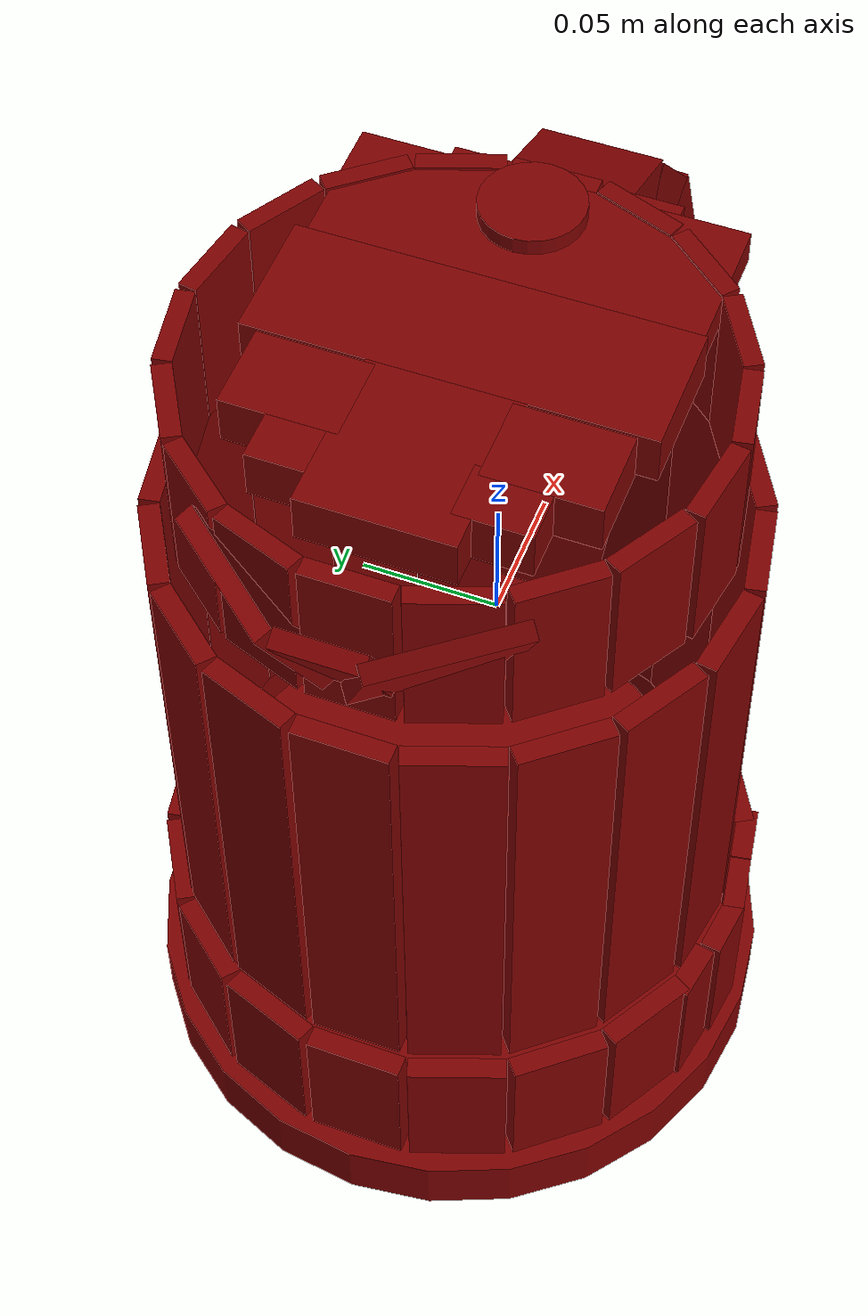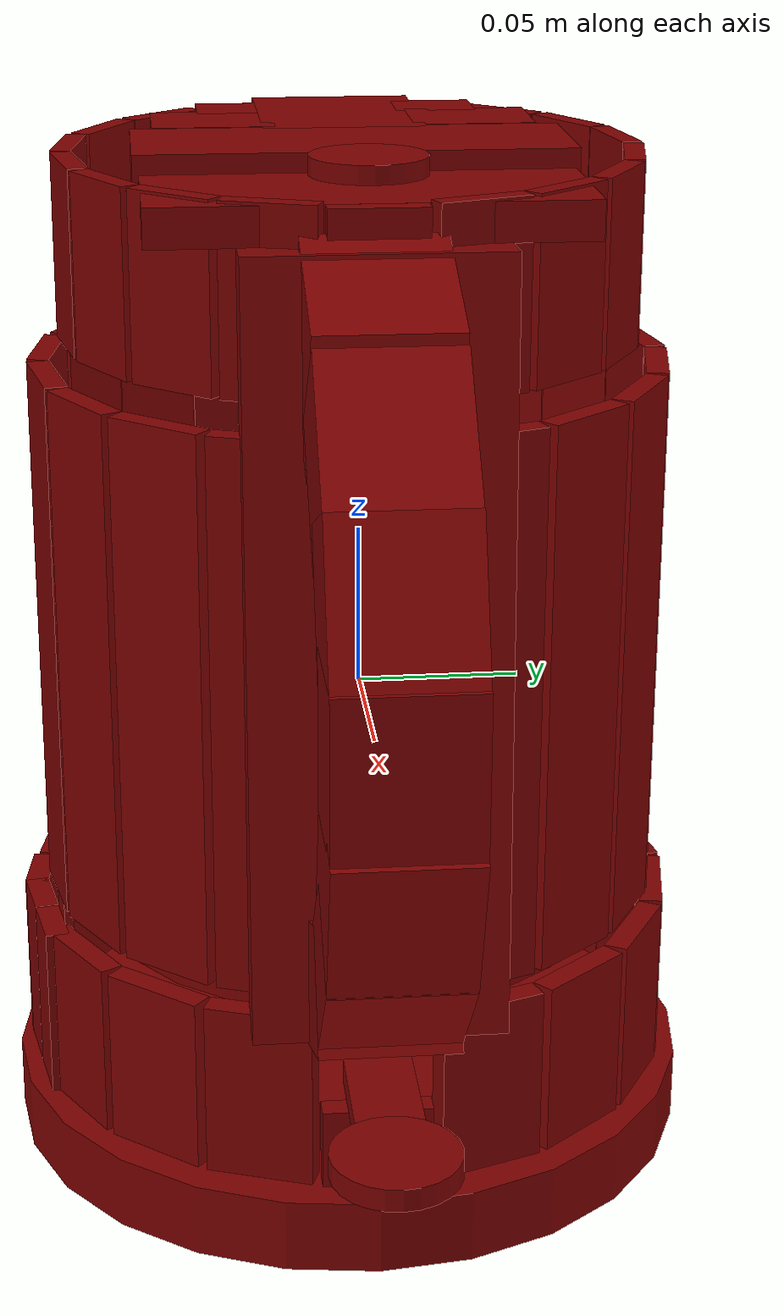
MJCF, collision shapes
<?xml version='1.0' encoding='UTF-8'?>
<mujoco model="model">
  <compiler angle="radian"/>
  <asset>
    <mesh file="visuals/Body001.obj" name="Body001_vis"/>
    <mesh file="visuals/Button001.obj" name="Button001_vis"/>
    <mesh file="visuals/Handle001.obj" name="Handle001_vis"/>
    <mesh file="visuals/Handle001_Clear.obj" name="Handle001_Clear_vis"/>
    <mesh file="visuals/Lever001.obj" name="Lever001_vis"/>
    <mesh file="visuals/Lid001.obj" name="Lid001_vis"/>
    <texture file="visuals/T_BC001.png" name="Body001_material" type="2d"/>
    <material name="Body001_material" rgba="1 1 1 1.0" texture="Body001_material" shininess="0.5" specular="0.3103448502657381"/>
    <texture file="visuals/T_BC001.png" name="Handle001_material" type="2d"/>
    <material name="Handle001_material" rgba="1 1 1 1.0" texture="Handle001_material" shininess="0.5" specular="0.3103448502657381"/>
    <texture file="visuals/T_BC001.png" name="Button001_material" type="2d"/>
    <material name="Button001_material" rgba="1 1 1 1.0" texture="Button001_material" shininess="0.5" specular="0.3103448502657381"/>
    <texture file="visuals/T_BC001.png" name="Handle001_Clear_material" type="2d"/>
    <material name="Handle001_Clear_material" rgba="1 1 1 0.699999988079071" texture="Handle001_Clear_material" shininess="0.5" specular="0.3103448502657381"/>
    <texture file="visuals/T_BC001.png" name="Lever001_material" type="2d"/>
    <material name="Lever001_material" rgba="1 1 1 1.0" texture="Lever001_material" shininess="0.5" specular="0.3103448502657381"/>
    <texture file="visuals/T_BC001.png" name="Lid001_material" type="2d"/>
    <material name="Lid001_material" rgba="1 1 1 1.0" texture="Lid001_material" shininess="0.5" specular="0.3103448502657381"/>
  </asset>
  <default>
    <default class="visual">
      <geom conaffinity="0" contype="0" group="1" type="mesh"/>
    </default>
    <default class="collision">
      <geom group="0" rgba="0.5 0 0 0.5"/>
    </default>
    <default class="spawn">
      <geom group="0" rgba="1 1 1 0.5" contype="0" conaffinity="0"/>
      <site group="0" rgba="1 1 1 0.5"/>
    </default>
    <default class="region">
      <geom group="1" conaffinity="0" contype="0" rgba="0 1 0 0"/>
    </default>
  </default>
  <worldbody>
    <body>
      <body name="object">
        <geom mesh="Body001_vis" type="mesh" solimp="0.998 0.998 0.001" solref="0.001 1" density="100" friction="0.95 0.3 0.1" class="visual" material="Body001_material"/>
        <geom class="collision" type="cylinder" pos="-0.036635 0.000000 -0.156730" size="0.11323785781860352 0.012101196683943272" quat="1.0 0.0 0.0 0.0"/>
        <body name="Handle001">
          <joint axis="0.0 0.0 1.0" pos="0.000641 -0.000064 0.008922" limited="true" name="Handle001_joint" range="0.0 0.05" type="slide" damping="1" frictionloss="1" armature=".01" stiffness="0.05"/>
          <geom mesh="Handle001_vis" type="mesh" solimp="0.998 0.998 0.001" solref="0.001 1" density="100" friction="0.95 0.3 0.1" class="visual" material="Handle001_material"/>
          <geom class="collision" type="box" pos="-0.139852 -0.000324 -0.112419" size="0.0038029812276363373 0.017222760245203972 0.028604567050933838" quat="1.0 0.0 0.0 0.0"/>
          <geom class="collision" type="box" pos="-0.133652 0.034837 -0.112419" size="0.0038029812276363373 0.017222760245203972 0.028604567050933838" quat="0.9848077297210693 0.0 -0.0 -0.17364826798439026"/>
          <geom class="collision" type="box" pos="-0.115800 0.065758 -0.112419" size="0.0038029812276363373 0.017222760245203972 0.028604567050933838" quat="0.9396926164627075 0.0 -0.0 -0.3420201539993286"/>
          <geom class="collision" type="box" pos="-0.088449 0.088708 -0.112419" size="0.003802981460466981 0.01722276210784912 0.028604567050933838" quat="0.866025447845459 0.0 -0.0 -0.4999999701976776"/>
          <geom class="collision" type="box" pos="-0.054899 0.100919 -0.112419" size="0.0038029812276363373 0.01722276210784912 0.028604567050933838" quat="0.7660444378852844 0.0 -0.0 -0.6427876353263855"/>
          <geom class="collision" type="box" pos="-0.019195 0.100919 -0.112419" size="0.0038029812276363373 0.017222760245203972 0.028604567050933838" quat="0.6427875757217407 0.0 -0.0 -0.7660444974899292"/>
          <geom class="collision" type="box" pos="0.014356 0.088708 -0.112419" size="0.003802981460466981 0.017222760245203972 0.028604567050933838" quat="0.5000000596046448 0.0 -0.0 -0.8660253882408142"/>
          <geom class="collision" type="box" pos="0.041706 0.065758 -0.112419" size="0.0038029812276363373 0.017222760245203972 0.028604567050933838" quat="0.3420201539993286 0.0 -0.0 -0.9396926164627075"/>
          <geom class="collision" type="box" pos="0.059558 0.034837 -0.112419" size="0.0038029812276363373 0.01722276210784912 0.028604567050933838" quat="0.17364822328090668 0.0 -0.0 -0.9848077297210693"/>
          <geom class="collision" type="box" pos="0.065758 -0.000324 -0.128545" size="0.0038029965944588184 0.017222817987203598 0.013098280876874924" quat="1.0 0.0 0.0 0.0"/>
          <geom class="collision" type="box" pos="0.059558 -0.035485 -0.112419" size="0.0038029812276363373 0.01722276210784912 0.028604567050933838" quat="0.17364822328090668 0.0 0.0 0.9848077297210693"/>
          <geom class="collision" type="box" pos="0.041706 -0.066406 -0.112419" size="0.0038029812276363373 0.017222760245203972 0.028604567050933838" quat="0.34202027320861816 0.0 0.0 0.9396925568580627"/>
          <geom class="collision" type="box" pos="0.014356 -0.089356 -0.112419" size="0.003802981460466981 0.017222760245203972 0.028604567050933838" quat="0.5000000596046448 0.0 0.0 0.8660253882408142"/>
          <geom class="collision" type="box" pos="-0.005882 -0.099878 -0.112419" size="0.0038029809948056936 0.01052257139235735 0.028604567050933838" quat="0.6427876353263855 0.0 0.0 0.7660444378852844"/>
          <geom class="collision" type="box" pos="-0.067318 -0.099381 -0.112419" size="0.0038029816932976246 0.01019357517361641 0.028604567050933838" quat="0.7660444378852844 0.0 0.0 0.6427876353263855"/>
          <geom class="collision" type="box" pos="-0.088449 -0.089356 -0.112419" size="0.003802981460466981 0.01722276210784912 0.028604567050933838" quat="0.8660255074501038 0.0 0.0 0.4999997913837433"/>
          <geom class="collision" type="box" pos="-0.115800 -0.066406 -0.112419" size="0.0038029812276363373 0.017222760245203972 0.028604567050933838" quat="0.9396926164627075 0.0 0.0 0.3420201539993286"/>
          <geom class="collision" type="box" pos="-0.133652 -0.035485 -0.112419" size="0.0038029812276363373 0.01722276210784912 0.028604567050933838" quat="0.9848077893257141 0.0 0.0 0.1736479252576828"/>
          <geom class="collision" type="box" pos="0.059368 0.000008 0.030263" size="0.00857990700751543 0.03885626792907715 0.11858449876308441" quat="0.9996725916862488 -7.246983609625259e-16 -0.025587743148207664 -3.437939488648567e-09"/>
          <geom class="collision" type="box" pos="-0.123987 0.000618 0.132383" size="0.0032161162234842777 0.014564995653927326 0.028536276891827583" quat="1.0 0.0 0.0 0.0"/>
          <geom class="collision" type="box" pos="-0.118744 0.030353 0.132383" size="0.0032161164563149214 0.014564993791282177 0.028536276891827583" quat="0.9848077297210693 0.0 -0.0 -0.17364826798439026"/>
          <geom class="collision" type="box" pos="-0.103647 0.056502 0.132383" size="0.003216115990653634 0.014564993791282177 0.028536276891827583" quat="0.9396926164627075 0.0 -0.0 -0.3420201539993286"/>
          <geom class="collision" type="box" pos="-0.080517 0.075911 0.132383" size="0.0032161157578229904 0.014564994722604752 0.028536276891827583" quat="0.866025447845459 0.0 -0.0 -0.4999999701976776"/>
          <geom class="collision" type="box" pos="-0.052144 0.086238 0.132383" size="0.003216118086129427 0.014564991928637028 0.028536276891827583" quat="0.7660444378852844 0.0 -0.0 -0.6427876353263855"/>
          <geom class="collision" type="box" pos="-0.021950 0.086238 0.132383" size="0.0032161162234842777 0.014564993791282177 0.028536276891827583" quat="0.6427875757217407 0.0 -0.0 -0.7660444974899292"/>
          <geom class="collision" type="box" pos="0.006423 0.075911 0.132383" size="0.0032161162234842777 0.014564992859959602 0.028536276891827583" quat="0.5000000596046448 0.0 -0.0 -0.8660253882408142"/>
          <geom class="collision" type="box" pos="0.029553 0.056502 0.132383" size="0.0032161162234842777 0.014564995653927326 0.028536276891827583" quat="0.3420201539993286 0.0 -0.0 -0.9396926164627075"/>
          <geom class="collision" type="box" pos="0.044650 0.030353 0.132383" size="0.0032161155249923468 0.01456499844789505 0.028536276891827583" quat="0.17364822328090668 0.0 -0.0 -0.9848077297210693"/>
          <geom class="collision" type="box" pos="0.049894 0.000618 0.133203" size="0.003216112731024623 0.014564995653927326 0.026827065274119377" quat="1.0 0.0 0.0 0.0"/>
          <geom class="collision" type="box" pos="0.044650 -0.029117 0.132383" size="0.003216116689145565 0.014564999379217625 0.028536276891827583" quat="0.17364822328090668 0.0 0.0 0.9848077297210693"/>
          <geom class="collision" type="box" pos="0.029553 -0.055266 0.132383" size="0.0032161178532987833 0.014564999379217625 0.028536276891827583" quat="0.34202027320861816 0.0 0.0 0.9396925568580627"/>
          <geom class="collision" type="box" pos="0.006423 -0.074674 0.132383" size="0.003216116689145565 0.014564994722604752 0.028536276891827583" quat="0.5000000596046448 0.0 0.0 0.8660253882408142"/>
          <geom class="collision" type="box" pos="-0.080517 -0.074674 0.132383" size="0.003216116689145565 0.01456499844789505 0.028536276891827583" quat="0.8660255074501038 0.0 0.0 0.4999997913837433"/>
          <geom class="collision" type="box" pos="-0.103647 -0.055266 0.132383" size="0.0032161178532987833 0.014564997516572475 0.028536276891827583" quat="0.9396926164627075 0.0 0.0 0.3420201539993286"/>
          <geom class="collision" type="box" pos="-0.118744 -0.029117 0.132383" size="0.003216116689145565 0.01456499844789505 0.028536276891827583" quat="0.9848077893257141 0.0 0.0 0.1736479252576828"/>
          <geom class="collision" type="box" pos="-0.022114 -0.085053 0.132383" size="0.0032161164563149214 0.014564997516572475 0.028536276891827583" quat="0.6365191340446472 0.0 0.0 0.7712609171867371"/>
          <geom class="collision" type="box" pos="-0.052304 -0.085546 0.132383" size="0.0032161178532987833 0.014564997516572475 0.028536276891827583" quat="0.7607770562171936 0.0 0.0 0.649013340473175"/>
          <geom class="collision" type="box" pos="0.063186 -0.000775 0.120522" size="0.023810403421521187 0.021033577620983124 0.024949699640274048" quat="6.761706572433468e-08 -0.18729208409786224 2.01860661519504e-08 -0.9823042750358582"/>
          <geom class="collision" type="box" pos="0.096939 -0.000775 0.100527" size="0.02381039783358574 0.021033577620983124 0.020623112097382545" quat="1.4059237685160042e-07 -0.4023577868938446 7.342559893430689e-09 -0.9154825210571289"/>
          <geom class="collision" type="box" pos="0.121043 -0.000775 0.068461" size="0.023810405284166336 0.021033577620983124 0.01890317164361477" quat="1.1034018143618596e-07 -0.5532423853874207 5.3928534526903604e-08 -0.8330203294754028"/>
          <geom class="collision" type="box" pos="0.130325 -0.000775 0.030269" size="0.018879814073443413 0.02103358507156372 0.02410959266126156" quat="1.0 0.0 0.0 0.0"/>
          <geom class="collision" type="box" pos="0.126106 -0.000775 -0.011005" size="0.02381039783358574 0.021033577620983124 0.018306635320186615" quat="-5.2893820878807674e-08 -0.8081547617912292 2.3579541164053808e-07 -0.5889701843261719"/>
          <geom class="collision" type="box" pos="0.107945 -0.000775 -0.044942" size="0.023810401558876038 0.021033577620983124 0.016938816756010056" quat="1.8325357586945756e-07 0.9143844246864319 -2.8854032052549883e-07 0.40484702587127686"/>
          <geom class="collision" type="box" pos="0.078962 -0.000775 -0.065671" size="0.02381039969623089 0.021033577620983124 0.019156059250235558" quat="1.304392043266489e-07 0.9797647595405579 -2.915321033469809e-07 0.20015253126621246"/>
          <geom class="collision" type="box" pos="0.023183 -0.000000 0.154158" size="0.023765312507748604 0.0646960437297821 0.005883392877876759" quat="1.0 0.0 0.0 0.0"/>
          <geom class="collision" type="box" pos="-0.136650 0.000618 0.137684" size="0.0032161162234842777 0.014564995653927326 0.020097581669688225" quat="0.9665632843971252 2.1661724131549938e-15 -0.25642818212509155 -3.4453400132861134e-08"/>
          <geom class="collision" type="box" pos="-0.122688 0.030131 0.137684" size="0.0032161162234842777 0.025760723277926445 0.020097581669688225" quat="0.906714141368866 -0.08883118629455566 -0.24055026471614838 -0.33483436703681946"/>
          <geom class="collision" type="box" pos="-0.126143 -0.027182 0.137684" size="0.0032161162234842777 0.025760719552636147 0.020097581669688225" quat="0.9123587608337402 0.08466571569442749 -0.24204778671264648 0.3191332519054413"/>
          <geom class="collision" type="box" pos="-0.026947 -0.103593 -0.112419" size="0.0038029809948056936 0.01052257139235735 0.028604567050933838" quat="0.6427876353263855 0.0 0.0 0.7660444378852844"/>
          <geom class="collision" type="box" pos="-0.045999 -0.104239 -0.112419" size="0.0038029812276363373 0.010522570461034775 0.028604567050933838" quat="0.7489557266235352 0.0 0.0 0.6626200675964355"/>
          <body name="Button001">
            <joint axis="0.0 8.881784197001252e-15 -1.0" pos="0.026603 0.000145 0.164330" limited="true" name="Button001_joint" range="0.0 0.004" type="slide" damping="1" frictionloss="1" armature=".01" stiffness="0.5" springref="-0.5"/>
            <geom mesh="Button001_vis" type="mesh" solimp="0.998 0.998 0.001" solref="0.001 1" density="100" friction="0.95 0.3 0.1" class="visual" material="Button001_material"/>
            <geom class="collision" type="cylinder" pos="0.026719 0.000145 0.167256" size="0.017381543293595314 0.002769363345578313" quat="1.0 0.0 0.0 0.0"/>
          </body>
          <body name="Handle001_Clear">
            <geom mesh="Handle001_Clear_vis" type="mesh" solimp="0.998 0.998 0.001" solref="0.001 1" density="100" friction="0.95 0.3 0.1" class="visual" material="Handle001_Clear_material"/>
            <geom class="collision" type="box" pos="-0.133488 0.000648 0.007993" size="0.0035675864201039076 0.016156701371073723 0.08791347593069077" quat="1.0 0.0 0.0 0.0"/>
            <geom class="collision" type="box" pos="-0.127672 0.033633 0.007993" size="0.003567586885765195 0.016156714409589767 0.08791357278823853" quat="0.9848077297210693 0.0 -0.0 -0.17364826798439026"/>
            <geom class="collision" type="box" pos="-0.110925 0.062639 0.007993" size="0.0035675859544426203 0.016156716272234917 0.08791357278823853" quat="0.9396926164627075 0.0 -0.0 -0.3420201539993286"/>
            <geom class="collision" type="box" pos="-0.085268 0.084169 0.007993" size="0.0035675859544426203 0.016156714409589767 0.08791357278823853" quat="0.866025447845459 0.0 -0.0 -0.4999999701976776"/>
            <geom class="collision" type="box" pos="-0.053794 0.095624 0.007993" size="0.003567588049918413 0.016156714409589767 0.08791357278823853" quat="0.7660444378852844 0.0 -0.0 -0.6427876353263855"/>
            <geom class="collision" type="box" pos="-0.020300 0.095624 0.007993" size="0.0035675866529345512 0.016156714409589767 0.08791357278823853" quat="0.6427875757217407 0.0 -0.0 -0.7660444974899292"/>
            <geom class="collision" type="box" pos="0.011174 0.084169 0.007993" size="0.003567586885765195 0.016156714409589767 0.08791357278823853" quat="0.5000000596046448 0.0 -0.0 -0.8660253882408142"/>
            <geom class="collision" type="box" pos="0.036832 0.062639 0.007993" size="0.0035675859544426203 0.016156718134880066 0.08791357278823853" quat="0.3420201539993286 0.0 -0.0 -0.9396926164627075"/>
            <geom class="collision" type="box" pos="0.053579 0.033633 0.007993" size="0.003567585488781333 0.016156718134880066 0.08791357278823853" quat="0.17364822328090668 0.0 -0.0 -0.9848077297210693"/>
            <geom class="collision" type="box" pos="0.059395 0.000648 0.010517" size="0.0035675957333296537 0.016156718134880066 0.08264804631471634" quat="1.0 0.0 0.0 0.0"/>
            <geom class="collision" type="box" pos="0.053579 -0.032337 0.007993" size="0.003567586885765195 0.016156723722815514 0.08791357278823853" quat="0.17364822328090668 0.0 0.0 0.9848077297210693"/>
            <geom class="collision" type="box" pos="0.036832 -0.061344 0.007993" size="0.003567588049918413 0.016156723722815514 0.08791357278823853" quat="0.34202027320861816 0.0 0.0 0.9396925568580627"/>
            <geom class="collision" type="box" pos="0.011174 -0.082873 0.007993" size="0.003567586885765195 0.016156714409589767 0.08791357278823853" quat="0.5000000596046448 0.0 0.0 0.8660253882408142"/>
            <geom class="collision" type="box" pos="-0.085268 -0.082873 0.007993" size="0.0035675864201039076 0.016156719997525215 0.08791357278823853" quat="0.8660255074501038 0.0 0.0 0.4999997913837433"/>
            <geom class="collision" type="box" pos="-0.110925 -0.061344 0.007993" size="0.003567588049918413 0.016156719997525215 0.08791357278823853" quat="0.9396926164627075 0.0 0.0 0.3420201539993286"/>
            <geom class="collision" type="box" pos="-0.127672 -0.032337 0.007993" size="0.003567587351426482 0.016156718134880066 0.08791357278823853" quat="0.9848077893257141 0.0 0.0 0.1736479252576828"/>
            <geom class="collision" type="box" pos="-0.020482 -0.094386 0.007993" size="0.003567586187273264 0.016156716272234917 0.08791357278823853" quat="0.6365191340446472 0.0 0.0 0.7712609171867371"/>
            <geom class="collision" type="box" pos="-0.053972 -0.094932 0.007993" size="0.003567588049918413 0.016156718134880066 0.08791357278823853" quat="0.7607770562171936 0.0 0.0 0.649013340473175"/>
            <geom class="collision" type="cylinder" pos="-0.036635 0.000000 -0.084000" size="0.08498886227607727 0.00908235926181078" quat="1.0 0.0 0.0 0.0"/>
          </body>
          <body name="Lever001">
            <joint axis="0.0 1.0 0.0" pos="0.072446 -0.000101 -0.104193" limited="true" name="Lever001_joint" range="0.0 0.2617993877991494" type="hinge" damping="1" frictionloss="1" armature=".01" stiffness="1" springref="-1"/>
            <geom mesh="Lever001_vis" type="mesh" solimp="0.998 0.998 0.001" solref="0.001 1" density="100" friction="0.95 0.3 0.1" class="visual" material="Lever001_material"/>
            <geom class="collision" type="cylinder" pos="0.117135 -0.000078 -0.103889" size="0.01972413808107376 0.003606347134336829" quat="1.0 0.0 0.0 0.0"/>
            <geom class="collision" type="box" pos="0.080624 0.000000 -0.104573" size="0.018911199644207954 0.010567450895905495 0.003926997538655996" quat="1.0 0.0 0.0 0.0"/>
          </body>
          <body name="Lid001">
            <joint axis="0.0 1.0 0.0" pos="-0.004508 -0.000004 0.162677" limited="true" name="Lid001_joint" range="0.0 1.5707963267948966" type="hinge" damping="1" frictionloss="1" armature=".01" stiffness="0.05"/>
            <geom mesh="Lid001_vis" type="mesh" solimp="0.998 0.998 0.001" solref="0.001 1" density="100" friction="0.95 0.3 0.1" class="visual" material="Lid001_material"/>
            <geom class="collision" type="box" pos="-0.026146 0.000000 0.156759" size="0.022182608023285866 0.06655722856521606 0.008596917614340782" quat="1.0 0.0 0.0 0.0"/>
            <geom class="collision" type="box" pos="-0.075899 0.000039 0.156759" size="0.029840057715773582 0.025471679866313934 0.008596925064921379" quat="1.0 0.0 0.0 0.0"/>
            <geom class="collision" type="box" pos="-0.064038 0.041092 0.156759" size="0.01466391235589981 0.019164586439728737 0.008596925064921379" quat="1.0 0.0 0.0 0.0"/>
            <geom class="collision" type="box" pos="-0.064038 -0.040520 0.156759" size="0.01466391235589981 0.019164588302373886 0.008596925064921379" quat="1.0 0.0 0.0 0.0"/>
            <geom class="collision" type="box" pos="-0.085553 0.031961 0.156759" size="0.00975166168063879 0.012744667008519173 0.008596925064921379" quat="1.0 0.0 0.0 0.0"/>
            <geom class="collision" type="box" pos="-0.085133 -0.031851 0.156759" size="0.00975166168063879 0.012744667008519173 0.008596925064921379" quat="1.0 0.0 0.0 0.0"/>
          </body>
        </body>
        <geom class="region" name="reg_main" type="box" pos="0.0 0.0 0.0" size="0.149514 0.112932 0.169677"/>
      </body>
    </body>
  </worldbody>
  <actuator>
    <motor name="Handle001_joint_actuator" joint="Handle001_joint" gear="100"/>
    <motor name="Button001_joint_actuator" joint="Button001_joint" gear="0.5"/>
    <motor name="Lever001_joint_actuator" joint="Lever001_joint" gear="3"/>
    <motor name="Lid001_joint_actuator" joint="Lid001_joint" gear="5"/>
  </actuator>
</mujoco>
